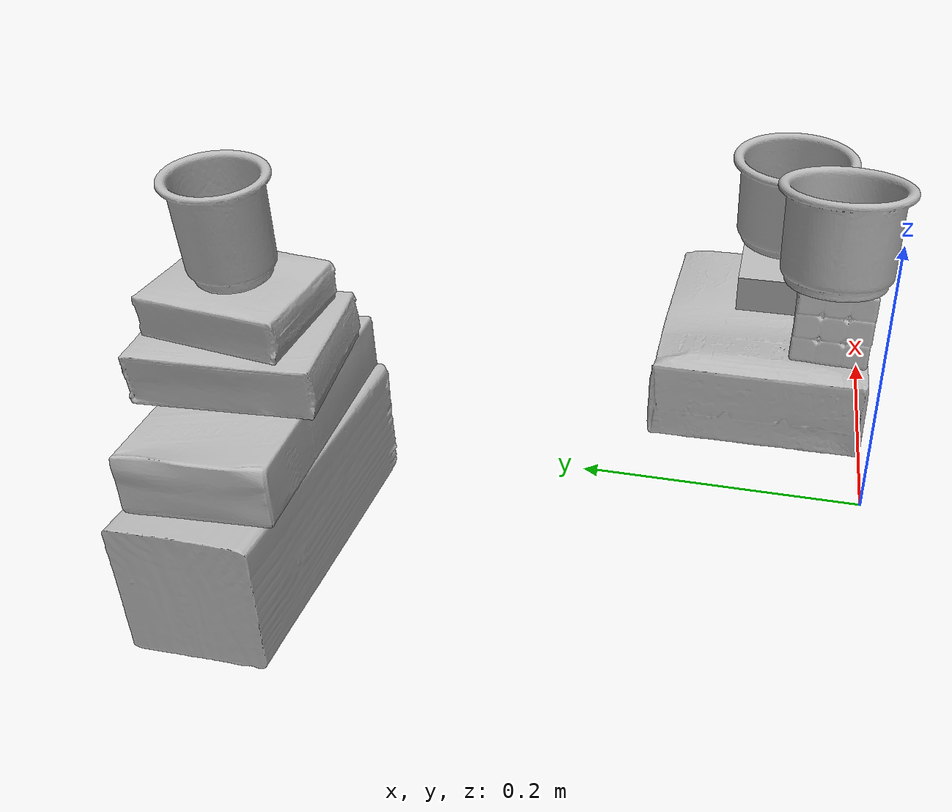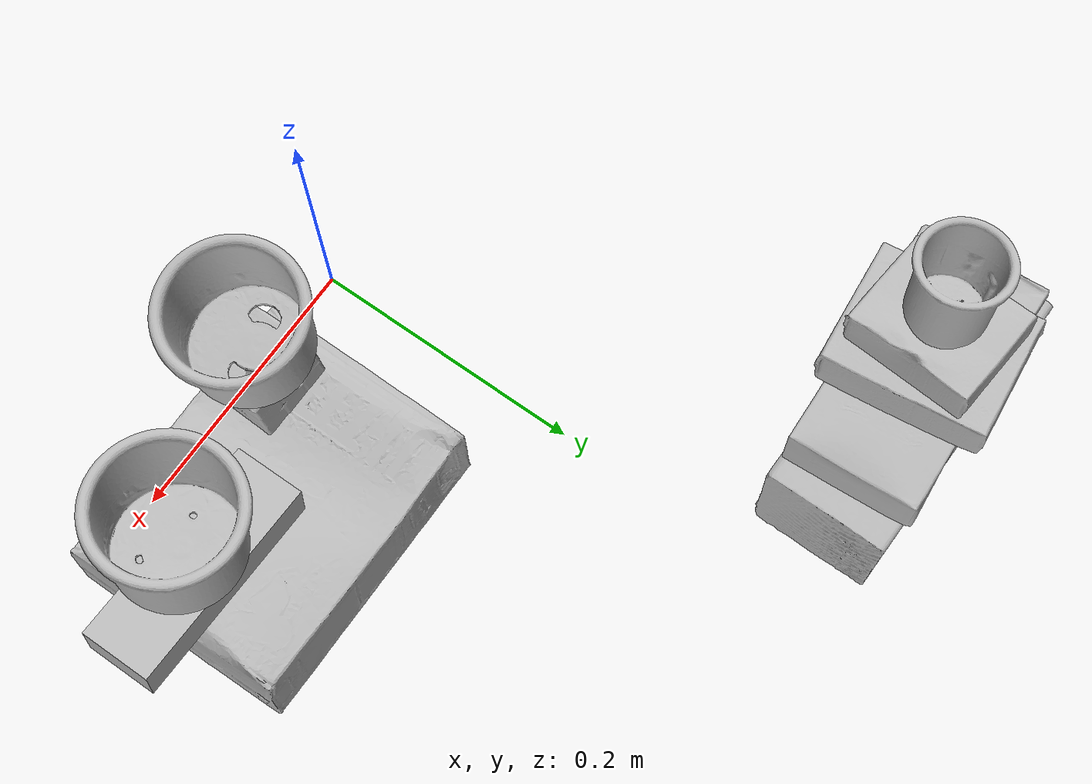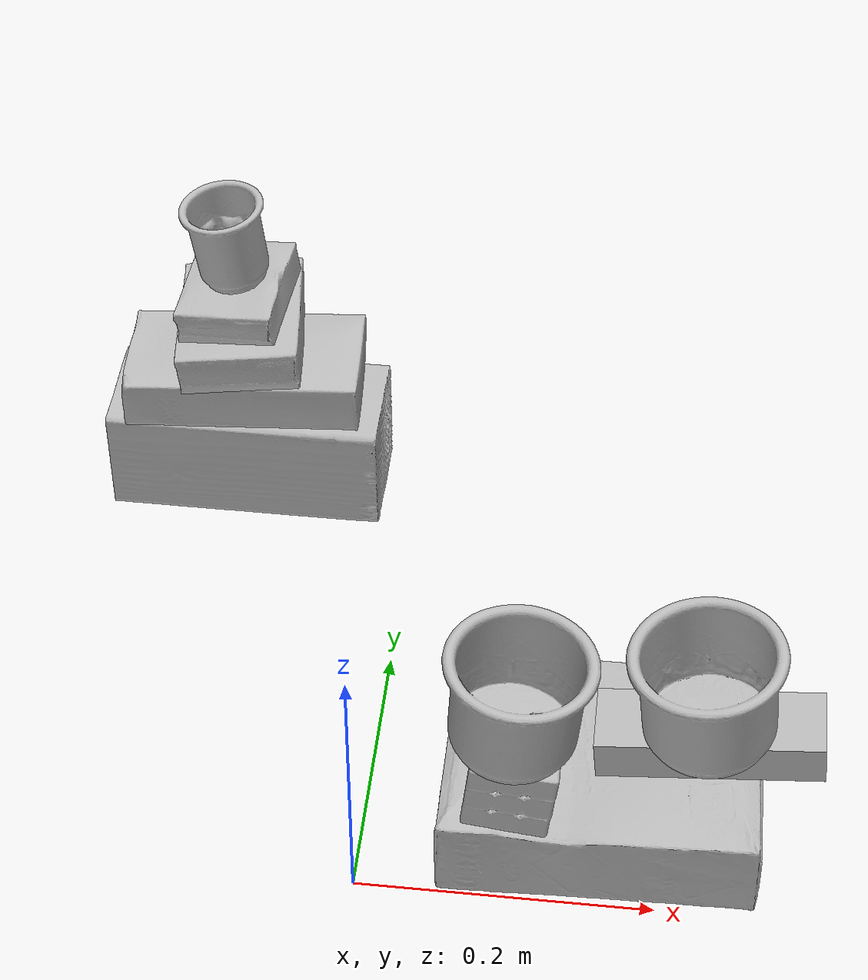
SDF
<?xml version="1.0" ?>
<sdf version="1.4">

  <world name="default">

    <light name="light1" type="point">

      <pose>0 0 1 0 0 0</pose>

      <diffuse>3 3 3 1</diffuse>

      <specular>3 3 3 1</specular>

    </light>

    <light name="light2" type="point">

      <pose>0 0.5 2 0 0 0</pose>

      <diffuse>1 1 1 1</diffuse>

      <specular>1 1 1 1</specular>

    </light>

    <light name="light3" type="point">

      <pose>0 0.5 2 0 0 0</pose>

      <diffuse>3 3 3 1</diffuse>

      <specular>3 3 3 1</specular>

    </light>

    <scene>

      <ambient>0.7 0.7 0.7</ambient>

    </scene>

    <model name="box21">

      <link name="link_box21">

        <collision name="default">

          <geometry>

            <mesh>

              <uri>model://cracker_box/collision_meshes/collision.obj</uri>

              <scale>1.0 1.0 1.0</scale>

            </mesh>

          </geometry>

          <surface>

            <friction>

              <ode>

                <mu>0.5</mu>

                <mu2>0.5</mu2>

              </ode>

            </friction>

          </surface>

        </collision>

        <visual name="default">

          <geometry>

            <mesh>

              <uri>model://cracker_box/visual_meshes/visual.dae</uri>

              <scale>1.0 1.0 1.0</scale>

            </mesh>

          </geometry>

        </visual>

        <inertial>

          <mass>3.1344146728515625</mass>

          <pose>0.0009464123286306858 0.00025434247800149024 -0.0017029535956680775 -0.0003162077429326042 -0.011106488668875016 0.0025467950024750923</pose>

          <inertia>

            <ixx>0.0079725515</ixx>

            <iyy>0.01316425</iyy>

            <izz>0.01878659</izz>

            <ixy>0</ixy>

            <ixz>0</ixz>

            <iyz>0</iyz>

          </inertia>

        </inertial>

      </link>

      <pose>0.15974944829940796 0.08062893897294998 0.036481767892837524 -0.011787009181633562 -0.007367332206833574 0.0004740094675430456</pose>

    </model>

    <model name="box22">

      <link name="link_box22">

        <collision name="default">

          <geometry>

            <mesh>

              <uri>model://jenga/collision_meshes/collision.obj</uri>

              <scale>1.0 1.0 1.0</scale>

            </mesh>

          </geometry>

          <surface>

            <friction>

              <ode>

                <mu>0.5</mu>

                <mu2>0.5</mu2>

              </ode>

            </friction>

          </surface>

        </collision>

        <visual name="default">

          <geometry>

            <mesh>

              <uri>model://jenga/visual_meshes/visual.dae</uri>

              <scale>1.0 1.0 1.0</scale>

            </mesh>

          </geometry>

        </visual>

        <inertial>

          <mass>0.23869852721691132</mass>

          <pose>-2.502855807051674e-07 -0.0001025000965455547 -4.092339804628864e-05 0.0 -7.34215461761844e-07 0.0</pose>

          <inertia>

            <ixx>6.605367e-05</ixx>

            <iyy>0.00044757788</iyy>

            <izz>0.00047782745</izz>

            <ixy>0</ixy>

            <ixz>0</ixz>

            <iyz>0</iyz>

          </inertia>

        </inertial>

      </link>

      <pose>0.22787538170814514 0.08078527450561523 0.08821085840463638 0.008896119617734153 -0.09304682351784421 0.0011965319063821096</pose>

    </model>

    <model name="box23">

      <link name="link_box23">

        <collision name="default">

          <geometry>

            <mesh>

              <uri>model://rubiks_cube/collision_meshes/collision.obj</uri>

              <scale>1.0 1.0 1.0</scale>

            </mesh>

          </geometry>

          <surface>

            <friction>

              <ode>

                <mu>0.5</mu>

                <mu2>0.5</mu2>

              </ode>

            </friction>

          </surface>

        </collision>

        <visual name="default">

          <geometry>

            <mesh>

              <uri>model://rubiks_cube/visual_meshes/visual.dae</uri>

              <scale>1.0 1.0 1.0</scale>

            </mesh>

          </geometry>

        </visual>

        <inertial>

          <mass>0.26229962706565857</mass>

          <pose>2.6721041649580002e-05 5.2569666877388954e-05 -7.264316082000732e-06 -0.05467189873579491 -0.09814109048128683 -0.0344550730209751</pose>

          <inertia>

            <ixx>0.00014493814</ixx>

            <iyy>0.00014426222</iyy>

            <izz>0.00014613918</izz>

            <ixy>0</ixy>

            <ixz>0</ixz>

            <iyz>0</iyz>

          </inertia>

        </inertial>

      </link>

      <pose>0.10190488398075104 0.03018169291317463 0.09571263939142227 0.006307328845822604 0.09268470702351067 -0.0032918389281933556</pose>

    </model>

    <model name="cup1">

      <link name="link_cup1">

        <collision name="default">

          <geometry>

            <mesh>

              <uri>model://j_cups/collision_meshes/collision.obj</uri>

              <scale>1.0 1.0 1.0</scale>

            </mesh>

          </geometry>

          <surface>

            <friction>

              <ode>

                <mu>0.5</mu>

                <mu2>0.5</mu2>

              </ode>

            </friction>

          </surface>

        </collision>

        <visual name="default">

          <geometry>

            <mesh>

              <uri>model://j_cups/visual_meshes/visual.dae</uri>

              <scale>1.0 1.0 1.0</scale>

            </mesh>

          </geometry>

        </visual>

        <inertial>

          <mass>0.10388943552970886</mass>

          <pose>0.0006164857186377048 0.0005398984649218619 -0.0013479008339345455 0.03030360356214998 0.03758024855654077 0.43868424196936845</pose>

          <inertia>

            <ixx>0.00015254253</ixx>

            <iyy>0.0001541288</iyy>

            <izz>0.00017584988</izz>

            <ixy>0</ixy>

            <ixz>0</ixz>

            <iyz>0</iyz>

          </inertia>

        </inertial>

      </link>

      <pose>0.2227843850851059 0.06995592266321182 0.14080913364887238 0.01418370724640065 -0.09675307965259393 0.0017994711843519003</pose>

    </model>

    <model name="cup2">

      <link name="link_cup2">

        <collision name="default">

          <geometry>

            <mesh>

              <uri>model://i_cups/collision_meshes/collision.obj</uri>

              <scale>1.0 1.0 1.0</scale>

            </mesh>

          </geometry>

          <surface>

            <friction>

              <ode>

                <mu>0.5</mu>

                <mu2>0.5</mu2>

              </ode>

            </friction>

          </surface>

        </collision>

        <visual name="default">

          <geometry>

            <mesh>

              <uri>model://i_cups/visual_meshes/visual.dae</uri>

              <scale>1.0 1.0 1.0</scale>

            </mesh>

          </geometry>

        </visual>

        <inertial>

          <mass>0.057485051453113556</mass>

          <pose>0.00011239853483857587 0.00016797262651380152 -0.000857901235576719 -0.028982969026390082 -0.03987335468246028 -0.34591562504163004</pose>

          <inertia>

            <ixx>7.958892e-05</ixx>

            <iyy>8.029015e-05</iyy>

            <izz>8.8953486e-05</izz>

            <ixy>0</ixy>

            <ixz>0</ixz>

            <iyz>0</iyz>

          </inertia>

        </inertial>

      </link>

      <pose>0.10254474729299545 0.032282326370477676 0.16191743314266205 -0.0014334428407340612 0.06505097826559607 -0.001388009675464004</pose>

    </model>

    <model name="box11">

      <link name="link_box11">

        <collision name="default">

          <geometry>

            <mesh>

              <uri>model://wood_block/collision_meshes/collision.obj</uri>

              <scale>1.0 1.0 1.0</scale>

            </mesh>

          </geometry>

          <surface>

            <friction>

              <ode>

                <mu>0.5</mu>

                <mu2>0.5</mu2>

              </ode>

            </friction>

          </surface>

        </collision>

        <visual name="default">

          <geometry>

            <mesh>

              <uri>model://wood_block/visual_meshes/visual.dae</uri>

              <scale>1.0 1.0 1.0</scale>

            </mesh>

          </geometry>

        </visual>

        <inertial>

          <mass>2.2218124866485596</mass>

          <pose>-5.813315510749817e-06 -0.000570809468626976 0.0002640858292579651 -0.052211005792275555 -0.005192694700552194 -0.006861375481739596</pose>

          <inertia>

            <ixx>0.0029731211</ixx>

            <iyy>0.009392092</iyy>

            <izz>0.009356961</izz>

            <ixy>0</ixy>

            <ixz>0</ixz>

            <iyz>0</iyz>

          </inertia>

        </inertial>

      </link>

      <pose>-0.12998631596565247 0.38107600808143616 0.045258574187755585 -0.005211353827385877 0.005718510297695764 -0.0019705601344977273</pose>

    </model>

    <model name="box12">

      <link name="link_box12">

        <collision name="default">

          <geometry>

            <mesh>

              <uri>model://sugar_box/collision_meshes/collision.obj</uri>

              <scale>1.0 1.0 1.0</scale>

            </mesh>

          </geometry>

          <surface>

            <friction>

              <ode>

                <mu>0.5</mu>

                <mu2>0.5</mu2>

              </ode>

            </friction>

          </surface>

        </collision>

        <visual name="default">

          <geometry>

            <mesh>

              <uri>model://sugar_box/visual_meshes/visual.dae</uri>

              <scale>1.0 1.0 1.0</scale>

            </mesh>

          </geometry>

        </visual>

        <inertial>

          <mass>1.0162616968154907</mass>

          <pose>0.0010343727190047503 3.849109634757042e-05 -0.00036364805418998003 -0.0004046261550277283 0.0010506634055573133 0.0026153787890220875</pose>

          <inertia>

            <ixx>0.00084674655</ixx>

            <iyy>0.002736858</iyy>

            <izz>0.0032763465</izz>

            <ixy>0</ixy>

            <ixz>0</ixz>

            <iyz>0</iyz>

          </inertia>

        </inertial>

      </link>

      <pose>-0.1308629810810089 0.37878191471099854 0.113660529255867 -0.0045914800083144865 -0.02326681467326855 0.04477737823636992</pose>

    </model>

    <model name="box13">

      <link name="link_box13">

        <collision name="default">

          <geometry>

            <mesh>

              <uri>model://pudding_box/collision_meshes/collision.obj</uri>

              <scale>1.0 1.0 1.0</scale>

            </mesh>

          </geometry>

          <surface>

            <friction>

              <ode>

                <mu>0.5</mu>

                <mu2>0.5</mu2>

              </ode>

            </friction>

          </surface>

        </collision>

        <visual name="default">

          <geometry>

            <mesh>

              <uri>model://pudding_box/visual_meshes/visual.dae</uri>

              <scale>1.0 1.0 1.0</scale>

            </mesh>

          </geometry>

        </visual>

        <inertial>

          <mass>0.24922829866409302</mass>

          <pose>0.0004894822486676276 0.0008067885646596551 -0.0005188828217796981 0.005213100397381839 -0.006603797317439846 0.02007982889363753</pose>

          <inertia>

            <ixx>0.00028173975</ixx>

            <iyy>0.00018955652</iyy>

            <izz>0.0004160624</izz>

            <ixy>0</ixy>

            <ixz>0</ixz>

            <iyz>0</iyz>

          </inertia>

        </inertial>

      </link>

      <pose>-0.13130083680152893 0.37868624925613403 0.15562783181667328 0.01783044448113197 -0.05274598996141335 0.1013635565579565</pose>

    </model>

    <model name="box14">

      <link name="link_box14">

        <collision name="default">

          <geometry>

            <mesh>

              <uri>model://gelatin_box/collision_meshes/collision.obj</uri>

              <scale>1.0 1.0 1.0</scale>

            </mesh>

          </geometry>

          <surface>

            <friction>

              <ode>

                <mu>0.5</mu>

                <mu2>0.5</mu2>

              </ode>

            </friction>

          </surface>

        </collision>

        <visual name="default">

          <geometry>

            <mesh>

              <uri>model://gelatin_box/visual_meshes/visual.dae</uri>

              <scale>1.0 1.0 1.0</scale>

            </mesh>

          </geometry>

        </visual>

        <inertial>

          <mass>0.21856601536273956</mass>

          <pose>0.0004319618456065655 0.00011156871914863586 -0.00036403213744051754 -0.001050372093012012 -0.00475581868936722 0.016440559471878533</pose>

          <inertia>

            <ixx>0.00015428978</ixx>

            <iyy>0.000110208384</iyy>

            <izz>0.00023486343</izz>

            <ixy>0</ixy>

            <ixz>0</ixz>

            <iyz>0</iyz>

          </inertia>

        </inertial>

      </link>

      <pose>-0.13273943960666656 0.3775750398635864 0.1892000138759613 0.05566096777529053 -0.08386657380700514 -0.08820625955750032</pose>

    </model>

    <model name="cup15">

      <link name="link_cup15">

        <collision name="default">

          <geometry>

            <mesh>

              <uri>model://b_cups/collision_meshes/collision.obj</uri>

              <scale>1.0 1.0 1.0</scale>

            </mesh>

          </geometry>

          <surface>

            <friction>

              <ode>

                <mu>0.5</mu>

                <mu2>0.5</mu2>

              </ode>

            </friction>

          </surface>

        </collision>

        <visual name="default">

          <geometry>

            <mesh>

              <uri>model://b_cups/visual_meshes/visual.dae</uri>

              <scale>1.0 1.0 1.0</scale>

            </mesh>

          </geometry>

        </visual>

        <inertial>

          <mass>0.04691024869680405</mass>

          <pose>0.0005182002787478268 0.0018058588029816747 -0.0013381802709773183 0.1135631498080702 0.03872518969029637 -0.3456955043116969</pose>

          <inertia>

            <ixx>3.0706047e-05</ixx>

            <iyy>3.012308e-05</iyy>

            <izz>2.5838557e-05</izz>

            <ixy>0</ixy>

            <ixz>0</ixz>

            <iyz>0</iyz>

          </inertia>

        </inertial>

      </link>

      <pose>-0.13592955470085144 0.37653860449790955 0.23551011085510254 0.0325118856354373 -0.11176389030675563 -0.01929286554574124</pose>

    </model>

  </world>

</sdf>
